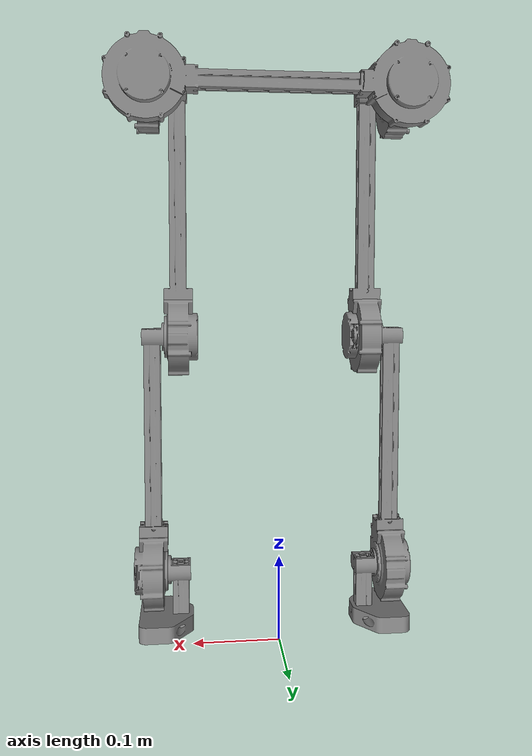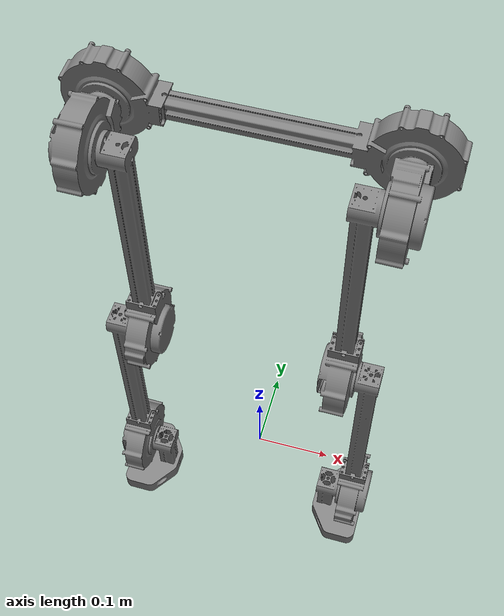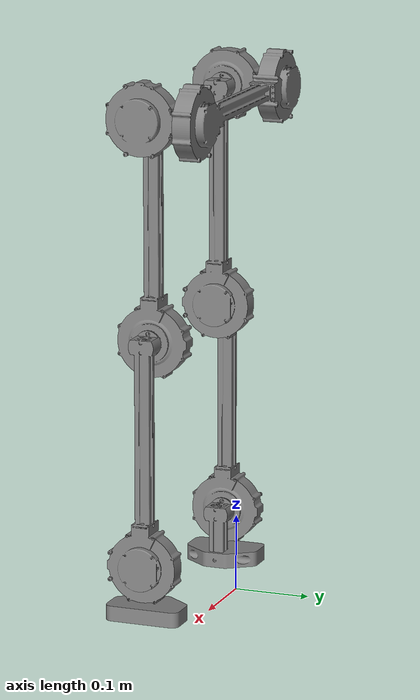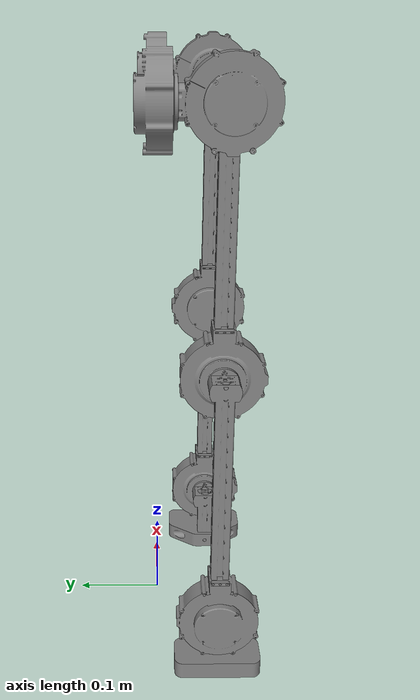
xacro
<?xml version="1.0"?>
<robot xmlns:xacro="http://www.ros.org/wiki/xacro"  name="bi_pedal_a1">

    <xacro:include filename="robot_core_2.xacro"/>

    <!-- XACRO to handle multiple ros2_control hardware_interface plugins -->

</robot>

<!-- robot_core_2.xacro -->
<robot xmlns:xacro="http://www.ros.org/wiki/xacro">

    <xacro:include filename="inertial_properties.xacro"/>

    <material name="grey">
        <color rgba="0.5 0.5 0.5 1"/>
    </material>

    <material name="blue">
        <color rgba="0.2 0.2 1 1"/>
    </material>

    <xacro:property name="scale_factor" value="0.001 0.001 0.001"/>
    <xacro:property name="package_name" value="bi_pedal_a1"/>

    <!-- ***************************************** Base ******************************************* -->

    <link name="world"/>

    <link name="base_link">
        <visual>
            <origin xyz="0 0 0"/>
            <geometry>
                <mesh filename="package://${package_name}/meshes/new/base_link.stl" scale="${scale_factor}"/>
            </geometry>
            <material name="grey"/>
        </visual>
        <collision>
            <origin xyz="0 0 0"/>
            <geometry>
                <mesh filename="package://${package_name}/meshes/new/base_link.stl" scale="${scale_factor}"/>
            </geometry>
        </collision>
        <xacro:base_link_inertial/>
    </link>

    <joint name="base_joint" type="fixed">
        <parent link="world"/>
        <child link="base_link"/>
        <origin xyz="0 0 0.6324" rpy="0 0 0"/>
    </joint>

    <!-- ***************************************** Left Hip *************************************** -->

    <link name="left_hip">
        <visual>
            <origin xyz="0 0 0"/>
            <geometry>
                <mesh filename="package://${package_name}/meshes/left_hip.stl" scale="${scale_factor}"/>
            </geometry>
            <material name="grey"/>
        </visual>
        <collision>
            <origin xyz="0 0 0"/>
            <geometry>
                <mesh filename="package://${package_name}/meshes/left_hip.stl" scale="${scale_factor}"/>
            </geometry>
        </collision>
        <xacro:left_hip_inertial/>
    </link>

    <joint name="left_hip_joint" type="revolute">
        <parent link="base_link"/>
        <child link="left_hip"/>
        <origin xyz="-0.148 -0.0175 0.01" rpy="${pi/2} 0 0"/>
        <axis xyz="0 0 1"/>
        <limit lower="${-pi/2}" upper="${pi/2}" effort="10" velocity="1"/>
    </joint>

    <!-- ***************************************** Right Hip *************************************** -->

    <link name="right_hip">
        <visual>
            <origin xyz="0 0 0"/>
            <geometry>
                <mesh filename="package://${package_name}/meshes/right_hip.stl" scale="${scale_factor}"/>
            </geometry>
            <material name="grey"/>
        </visual>
        <collision>
            <origin xyz="0 0 0"/>
            <geometry>
                <mesh filename="package://${package_name}/meshes/right_hip.stl" scale="${scale_factor}"/>
            </geometry>
        </collision>
        <xacro:right_hip_inertial/>
    </link>

    <joint name="right_hip_joint" type="revolute">
        <parent link="base_link"/>
        <child link="right_hip"/>
        <origin xyz="0.148 -0.0175 0.01" rpy="${pi/2} 0 0"/>
        <axis xyz="0 0 1"/>
        <limit lower="${pi/2}" upper="${-pi/2}" effort="10" velocity="1"/>
    </joint>

    <!-- ***************************************** Left thigh ************************************* -->

    <link name="left_thigh">
        <visual>
            <origin xyz="0 0 0"/>
            <geometry>
                <mesh filename="package://${package_name}/meshes/left_thigh.stl" scale="${scale_factor}"/>
            </geometry>
            <material name="grey"/>
        </visual>
        <collision>
            <origin xyz="0 0 0"/>
            <geometry>
                <mesh filename="package://${package_name}/meshes/left_thigh.stl" scale="${scale_factor}"/>
            </geometry>
        </collision>
        <xacro:left_thigh_inertial/>
    </link>

    <joint name="left_thigh_joint" type="revolute">
        <parent link="left_hip"/>
        <child link="left_thigh"/>
        <origin xyz="0.0175 0 0.051" rpy="${-pi/2} 0 0"/>
        <axis xyz="1 0 0"/>
        <limit lower="${-pi/2}" upper="${pi/2}" effort="10" velocity="1"/>
    </joint>

    <!-- ***************************************** right thigh ************************************ -->

    <link name="right_thigh">
        <visual>
            <origin xyz="0 0 0"/>
            <geometry>
                <mesh filename="package://${package_name}/meshes/right_thigh.stl" scale="${scale_factor}"/>
            </geometry>
            <material name="grey"/>
        </visual>
        <collision>
            <origin xyz="0 0 0"/>
            <geometry>
                <mesh filename="package://${package_name}/meshes/right_thigh.stl" scale="${scale_factor}"/>
            </geometry>
        </collision>
        <xacro:right_thigh_inertial/>
    </link>

    <joint name="right_thigh_joint" type="revolute">
        <parent link="right_hip"/>
        <child link="right_thigh"/>
        <origin xyz="-0.0175 0 0.051" rpy="${-pi/2} 0 0"/>
        <axis xyz="1 0 0"/>
        <limit lower="${-pi/2}" upper="${pi/2}" effort="10" velocity="1"/>
    </joint>

    <!-- ***************************************** Left shin ************************************* -->

    <link name="left_shin">
        <visual>
            <origin xyz="0 0 0"/>
            <geometry>
                <mesh filename="package://${package_name}/meshes/left_shin.stl" scale="${scale_factor}"/>
            </geometry>
            <material name="grey"/>
        </visual>
        <collision>
            <origin xyz="0 0 0"/>
            <geometry>
                <mesh filename="package://${package_name}/meshes/left_shin.stl" scale="${scale_factor}"/>
            </geometry>
        </collision>
        <xacro:left_shin_inertial/>
    </link>

    <joint name="left_shin_joint" type="revolute">
        <parent link="left_thigh"/>
        <child link="left_shin"/>
        <origin xyz="0 0 -0.2885" rpy="0 0 0"/>
        <axis xyz="1 0 0"/>
        <limit lower="${-pi/2}" upper="${pi/2}" effort="10" velocity="1"/>
    </joint>

    <!-- ***************************************** right shin ************************************* -->

    <link name="right_shin">
        <visual>
            <origin xyz="0 0 0"/>
            <geometry>
                <mesh filename="package://${package_name}/meshes/right_shin.stl" scale="${scale_factor}"/>
            </geometry>
            <material name="grey"/>
        </visual>
        <collision>
            <origin xyz="0 0 0"/>
            <geometry>
                <mesh filename="package://${package_name}/meshes/right_shin.stl" scale="${scale_factor}"/>
            </geometry>
        </collision>
        <xacro:right_shin_inertial/>
    </link>

    <joint name="right_shin_joint" type="revolute">
        <parent link="right_thigh"/>
        <child link="right_shin"/>
        <origin xyz="0 0 -0.2885" rpy="0 0 0"/>
        <axis xyz="1 0 0"/>
        <limit lower="${-pi/2}" upper="${pi/2}" effort="10" velocity="1"/>
    </joint>

    <!-- ***************************************** Left foot ************************************* -->

    <link name="left_foot">
        <visual>
            <origin xyz="0 0 0"/>
            <geometry>
                <mesh filename="package://${package_name}/meshes/new/left_foot.stl" scale="${scale_factor}"/>
            </geometry>
            <material name="grey"/>
        </visual>
        <collision>
            <origin xyz="0 0 0"/>
            <geometry>
                <mesh filename="package://${package_name}/meshes/new/left_foot.stl" scale="${scale_factor}"/>
            </geometry>
        </collision>
        <xacro:left_foot_inertial/>
    </link>

    <joint name="left_foot_joint" type="revolute">
        <parent link="left_shin"/>
        <child link="left_foot"/>
        <origin xyz="0 0 -0.2885" rpy="0 0 0"/>
        <axis xyz="1 0 0"/>
        <limit lower="${-pi/2}" upper="${pi/2}" effort="10" velocity="1"/>
    </joint>

    <!-- ***************************************** Right foot ************************************* -->

    <link name="right_foot">
        <visual>
            <origin xyz="0 0 0"/>
            <geometry>
                <mesh filename="package://${package_name}/meshes/new/right_foot.stl" scale="${scale_factor}"/>
            </geometry>
            <material name="grey"/>
        </visual>
        <collision>
            <origin xyz="0 0 0"/>
            <geometry>
                <mesh filename="package://${package_name}/meshes/new/right_foot.stl" scale="${scale_factor}"/>
            </geometry>
        </collision>
        <xacro:right_foot_inertial/>
    </link>

    <joint name="right_foot_joint" type="revolute">
        <parent link="right_shin"/>
        <child link="right_foot"/>
        <origin xyz="0 0 -0.2885" rpy="0 0 0"/>
        <axis xyz="1 0 0"/>
        <limit lower="${-pi/2}" upper="${pi/2}" effort="10" velocity="1"/>
    </joint>

</robot>

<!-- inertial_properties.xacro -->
<robot xmlns:xacro="http://www.ros.org/wiki/xacro">

    <xacro:property name="base_link_com" value="0 -0.00225 0.01017"/>
    <xacro:property name="base_link_mass" value="2.234"/>
    <xacro:property name="base_link_ixx" value="0.001"/>
    <xacro:property name="base_link_ixy" value="0.00000022295"/>
    <xacro:property name="base_link_ixz" value="0.0000001396"/>
    <xacro:property name="base_link_iyy" value="0.05"/>
    <xacro:property name="base_link_iyz" value="0.000004933"/>
    <xacro:property name="base_link_izz" value="0.05"/>

    <xacro:property name="left_hip_com" value="0.00262 0 0.04794"/>
    <xacro:property name="left_hip_mass" value="0.3847"/>
    <xacro:property name="left_hip_ixx" value="0.0004"/>
    <xacro:property name="left_hip_ixy" value="-0.0000013"/>
    <xacro:property name="left_hip_ixz" value="-0.000002522"/>
    <xacro:property name="left_hip_iyy" value="0.0002"/>
    <xacro:property name="left_hip_iyz" value="0.000000485"/>
    <xacro:property name="left_hip_izz" value="0.0002"/>

    <xacro:property name="right_hip_com" value="-0.00262 0 0.04794"/>
    <xacro:property name="right_hip_mass" value="0.3847"/>
    <xacro:property name="right_hip_ixx" value="0.0004"/>
    <xacro:property name="right_hip_ixy" value="-0.0000013"/>
    <xacro:property name="right_hip_ixz" value="0.000003369"/>
    <xacro:property name="right_hip_iyy" value="0.0002"/>
    <xacro:property name="right_hip_iyz" value="0.000000485"/>
    <xacro:property name="right_hip_izz" value="0.0002"/>

    <xacro:property name="left_thigh_com" value="0.0148 0 -0.201"/>
    <xacro:property name="left_thigh_mass" value="0.619"/>
    <xacro:property name="left_thigh_ixx" value="0.009"/>
    <xacro:property name="left_thigh_ixy" value="0.000001214"/>
    <xacro:property name="left_thigh_ixz" value="0.000031265"/>
    <xacro:property name="left_thigh_iyy" value="0.009"/>
    <xacro:property name="left_thigh_iyz" value="0.000009833"/>
    <xacro:property name="left_thigh_izz" value="0.0002"/>

    <xacro:property name="right_thigh_com" value="-0.0139 0 -0.201"/>
    <xacro:property name="right_thigh_mass" value="0.619"/>
    <xacro:property name="right_thigh_ixx" value="0.009"/>
    <xacro:property name="right_thigh_ixy" value="0.000001214"/>
    <xacro:property name="right_thigh_ixz" value="0.000031265"/>
    <xacro:property name="right_thigh_iyy" value="0.009"/>
    <xacro:property name="right_thigh_iyz" value="0.000009833"/>
    <xacro:property name="right_thigh_izz" value="0.0002"/>

    <xacro:property name="left_shin_com" value="-0.0136 0 -0.2296"/>
    <xacro:property name="left_shin_mass" value="0.542"/>
    <xacro:property name="left_shin_ixx" value="0.006"/>
    <xacro:property name="left_shin_ixy" value="0.000001214"/>
    <xacro:property name="left_shin_ixz" value="0.000031265"/>
    <xacro:property name="left_shin_iyy" value="0.005"/>
    <xacro:property name="left_shin_iyz" value="0.000009833"/>
    <xacro:property name="left_shin_izz" value="0.002"/>

    <xacro:property name="right_shin_com" value="0.01466 0 -0.2296"/>
    <xacro:property name="right_shin_mass" value="0.542"/>
    <xacro:property name="right_shin_ixx" value="0.006"/>
    <xacro:property name="right_shin_ixy" value="-0.000000068"/>
    <xacro:property name="right_shin_ixz" value="0.000045314"/>
    <xacro:property name="right_shin_iyy" value="0.005"/>
    <xacro:property name="right_shin_iyz" value="-0.000000137"/>
    <xacro:property name="right_shin_izz" value="0.002"/>

    <xacro:property name="left_foot_com" value="0.0049 0 -0.0351"/>
    <xacro:property name="left_foot_mass" value="0.233"/>
    <xacro:property name="left_foot_ixx" value="0.002"/>
    <xacro:property name="left_foot_ixy" value="0.000000214"/>
    <xacro:property name="left_foot_ixz" value="-0.000045314"/>
    <xacro:property name="left_foot_iyy" value="0.0002"/>
    <xacro:property name="left_foot_iyz" value="0.000000194"/>
    <xacro:property name="left_foot_izz" value="0.0001"/>

    <xacro:property name="right_foot_com" value="-0.00477 0 -0.0351"/>
    <xacro:property name="right_foot_mass" value="0.233"/>
    <xacro:property name="right_foot_ixx" value="0.002"/>
    <xacro:property name="right_foot_ixy" value="-0.000000068"/>
    <xacro:property name="right_foot_ixz" value="0.000045314"/>
    <xacro:property name="right_foot_iyy" value="0.0002"/>
    <xacro:property name="right_foot_iyz" value="-0.000000137"/>
    <xacro:property name="right_foot_izz" value="0.0001"/>

    <xacro:macro name="link_inertial" params="xyz mass ixx ixy ixz iyy iyz izz">
        <inertial>
            <origin xyz="${xyz}"/>
            <mass value="${mass}"/>
            <inertia ixx="${ixx}" ixy="${ixy}" ixz="${ixz}"
                     iyx="${ixy}" iyy="${iyy}" iyz="${iyz}"
                     izx="${ixz}" izy="${iyz}" izz="${izz}"/>
        </inertial>
    </xacro:macro>

    <xacro:macro name="base_link_inertial">
        <xacro:link_inertial xyz="${base_link_com}" mass="${base_link_mass}"
                             ixx="${base_link_ixx}" ixy="${base_link_ixy}" ixz="${base_link_ixz}"
                             iyy="${base_link_iyy}" iyz="${base_link_iyz}" izz="${base_link_izz}"/>
    </xacro:macro>

    <xacro:macro name="left_hip_inertial">
        <xacro:link_inertial xyz="${left_hip_com}" mass="${left_hip_mass}"
                             ixx="${left_hip_ixx}" ixy="${left_hip_ixy}" ixz="${left_hip_ixz}"
                             iyy="${left_hip_iyy}" iyz="${left_hip_iyz}" izz="${left_hip_izz}"/>
    </xacro:macro>

    <xacro:macro name="right_hip_inertial">
        <xacro:link_inertial xyz="${right_hip_com}" mass="${right_hip_mass}"
                             ixx="${right_hip_ixx}" ixy="${right_hip_ixy}" ixz="${right_hip_ixz}"
                             iyy="${right_hip_iyy}" iyz="${right_hip_iyz}" izz="${right_hip_izz}"/>
    </xacro:macro>

    <xacro:macro name="left_thigh_inertial">
        <xacro:link_inertial xyz="${left_thigh_com}" mass="${left_thigh_mass}"
                             ixx="${left_thigh_ixx}" ixy="${left_thigh_ixy}" ixz="${left_thigh_ixz}"
                             iyy="${left_thigh_iyy}" iyz="${left_thigh_iyz}" izz="${left_thigh_izz}"/>
    </xacro:macro>

    <xacro:macro name="right_thigh_inertial">
        <xacro:link_inertial xyz="${right_thigh_com}" mass="${right_thigh_mass}"
                             ixx="${right_thigh_ixx}" ixy="${right_thigh_ixy}" ixz="${right_thigh_ixz}"
                             iyy="${right_thigh_iyy}" iyz="${right_thigh_iyz}" izz="${right_thigh_izz}"/>
    </xacro:macro>

    <xacro:macro name="left_shin_inertial">
        <xacro:link_inertial xyz="${left_shin_com}" mass="${left_shin_mass}"
                             ixx="${left_shin_ixx}" ixy="${left_shin_ixy}" ixz="${left_shin_ixz}"
                             iyy="${left_shin_iyy}" iyz="${left_shin_iyz}" izz="${left_shin_izz}"/>
    </xacro:macro>

    <xacro:macro name="right_shin_inertial">
        <xacro:link_inertial xyz="${right_shin_com}" mass="${right_shin_mass}"
                             ixx="${right_shin_ixx}" ixy="${right_shin_ixy}" ixz="${right_shin_ixz}"
                             iyy="${right_shin_iyy}" iyz="${right_shin_iyz}" izz="${right_shin_izz}"/>
    </xacro:macro>

    <xacro:macro name="left_foot_inertial">
        <xacro:link_inertial xyz="${left_foot_com}" mass="${left_foot_mass}"
                             ixx="${left_foot_ixx}" ixy="${left_foot_ixy}" ixz="${left_foot_ixz}"
                             iyy="${left_foot_iyy}" iyz="${left_foot_iyz}" izz="${left_foot_izz}"/>
    </xacro:macro>

    <xacro:macro name="right_foot_inertial">
        <xacro:link_inertial xyz="${right_foot_com}" mass="${right_foot_mass}"
                             ixx="${right_foot_ixx}" ixy="${right_foot_ixy}" ixz="${right_foot_ixz}"
                             iyy="${right_foot_iyy}" iyz="${right_foot_iyz}" izz="${right_foot_izz}"/>
    </xacro:macro>

</robot>
